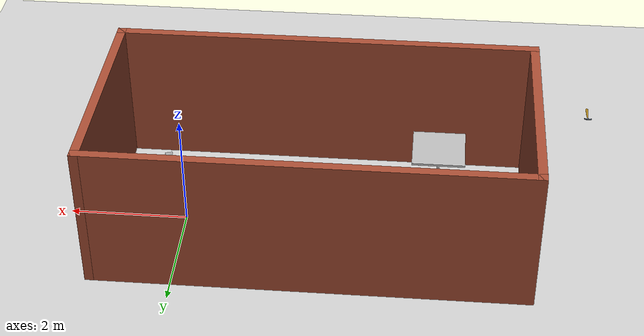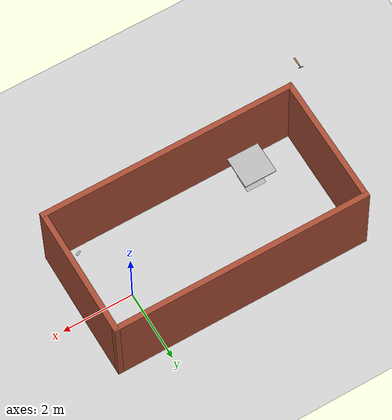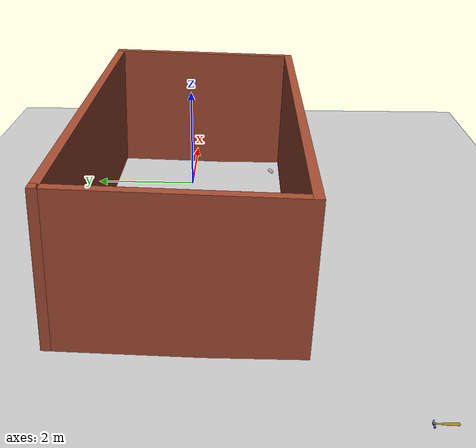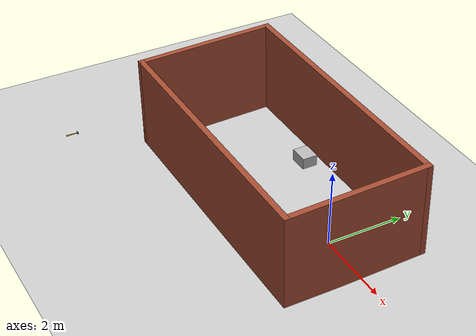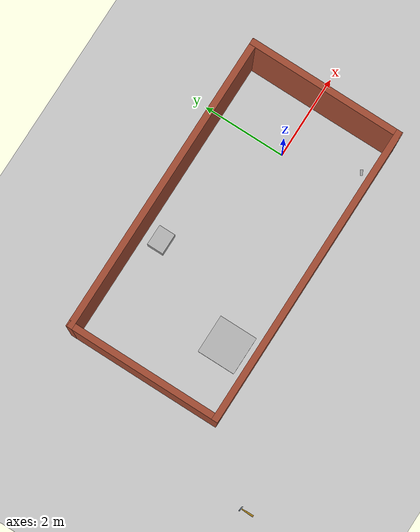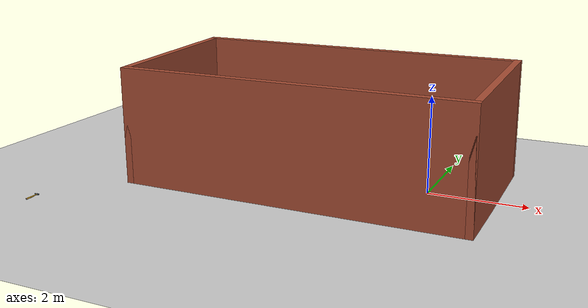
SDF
<sdf version="1.6">
 <world name="default">
  <light name="sun" type="directional">
   <pose>0 0 15 0 -0 0</pose>
   <diffuse>0.8 0.8 0.8 1</diffuse>
   <specular>0.2 0.2 0.2 1</specular>
   <attenuation>
    <range>1000</range>
    <constant>0.9</constant>
    <linear>0.01</linear>
    <quadratic>0.001</quadratic>
   </attenuation>
   <direction>-0.5 0.1 -0.9</direction>
  </light>
  <model name="ground_plane">
   <static>1</static>
   <link name="link">
    <collision name="collision">
     <geometry><plane><normal>0 0 1</normal><size>100 100</size></plane></geometry>
     <surface><friction><ode><mu>100</mu><mu2>50</mu2></ode></friction></surface>
    </collision>
    <visual name="visual">
     <transparency>1</transparency>
     <cast_shadows>0</cast_shadows>
     <geometry><plane><normal>0 0 1</normal><size>100 100</size></plane></geometry>
     <material>
      <script><uri>file://media/materials/scripts/gazebo.material</uri><name>Gazebo/Grey</name></script>
     </material>
    </visual>
   </link>
  </model>
  <gravity>0 0 -9.8</gravity>
  <magnetic_field>6e-06 2.3e-05 -4.2e-05</magnetic_field>
  <atmosphere type="adiabatic"/>
  <physics name="default_physics" default="0" type="ode">
   <max_step_size>0.001</max_step_size>
   <real_time_factor>1</real_time_factor>
   <real_time_update_rate>1000</real_time_update_rate>
  </physics>
  <scene><ambient>0.4 0.4 0.4 1</ambient><background>0.7 0.7 0.7 1</background><shadows>1</shadows></scene>
  <spherical_coordinates>
   <surface_model>EARTH_WGS84</surface_model>
   <latitude_deg>0</latitude_deg>
   <longitude_deg>0</longitude_deg>
   <elevation>0</elevation>
   <heading_deg>0</heading_deg>
  </spherical_coordinates>
  <model name="hammer">
   <static>1</static>
   <link name="link">
    <collision name="collision">
     <geometry><mesh><uri>model://hammer/meshes/hammer.dae</uri></mesh></geometry>
    </collision>
    <visual name="visual"><geometry><mesh><uri>model://hammer/meshes/hammer.dae</uri></mesh></geometry></visual>
   </link>
   <pose>-7.05574 -3.50474 0 0 -0 0</pose>
  </model>
  <model name="new_world">
   <pose>-2.23885 -0.138223 0 0.027233 -0 0</pose>
   <link name="Wall_10">
    <collision name="Wall_10_Collision">
     <geometry><box><size>7.25 0.15 2.5</size></box></geometry>
     <pose>0 0 1.25 0 -0 0</pose>
    </collision>
    <visual name="Wall_10_Visual">
     <pose>0 0 1.25 0 -0 0</pose>
     <geometry><box><size>7.25 0.15 2.5</size></box></geometry>
     <material>
      <script><uri>file://media/materials/scripts/gazebo.material</uri><name>Gazebo/Bricks</name></script>
      <ambient>1 1 1 1</ambient>
     </material>
     <meta><layer>0</layer></meta>
    </visual>
    <pose>0 1.8 0 0 -0 3.14159</pose>
   </link>
   <link name="Wall_7">
    <collision name="Wall_7_Collision">
     <geometry><box><size>3.75 0.15 2.5</size></box></geometry>
     <pose>0 0 1.25 0 -0 0</pose>
    </collision>
    <visual name="Wall_7_Visual">
     <pose>0 0 1.25 0 -0 0</pose>
     <geometry><box><size>3.75 0.15 2.5</size></box></geometry>
     <material>
      <script><uri>file://media/materials/scripts/gazebo.material</uri><name>Gazebo/Bricks</name></script>
      <ambient>1 1 1 1</ambient>
     </material>
     <meta><layer>0</layer></meta>
    </visual>
    <pose>-3.55 0 0 0 0 -1.5708</pose>
   </link>
   <link name="Wall_8">
    <collision name="Wall_8_Collision">
     <geometry><box><size>7.25 0.15 2.5</size></box></geometry>
     <pose>0 0 1.25 0 -0 0</pose>
    </collision>
    <visual name="Wall_8_Visual">
     <pose>0 0 1.25 0 -0 0</pose>
     <geometry><box><size>7.25 0.15 2.5</size></box></geometry>
     <material>
      <script><uri>file://media/materials/scripts/gazebo.material</uri><name>Gazebo/Bricks</name></script>
      <ambient>1 1 1 1</ambient>
     </material>
     <meta><layer>0</layer></meta>
    </visual>
    <pose>0 -1.8 0 0 -0 0</pose>
   </link>
   <link name="Wall_9">
    <collision name="Wall_9_Collision">
     <geometry><box><size>3.75 0.15 2.5</size></box></geometry>
     <pose>0 0 1.25 0 -0 0</pose>
    </collision>
    <visual name="Wall_9_Visual">
     <pose>0 0 1.25 0 -0 0</pose>
     <geometry><box><size>3.75 0.15 2.5</size></box></geometry>
     <material>
      <script><uri>file://media/materials/scripts/gazebo.material</uri><name>Gazebo/Bricks</name></script>
      <ambient>1 1 1 1</ambient>
     </material>
     <meta><layer>0</layer></meta>
    </visual>
    <pose>3.55 0 0 0 -0 1.5708</pose>
   </link>
   <static>1</static>
  </model>
  <model name="coke_can">
   <link name="link">
    <inertial>
     <pose>-0.01 -0.012 0.15 0 -0 0</pose>
     <mass>0.39</mass>
     <inertia><ixx>0.00058</ixx><ixy>0</ixy><ixz>0</ixz><iyy>0.00058</iyy><iyz>0</iyz><izz>0.00019</izz></inertia>
    </inertial>
    <collision name="collision">
     <pose>0 0 -0.46 0 -0 0</pose>
     <geometry><mesh><uri>model://coke_can/meshes/coke_can.dae</uri></mesh></geometry>
     <surface>
      <friction><ode><mu>1</mu><mu2>1</mu2></ode></friction>
      <contact><ode><kp>1e+07</kp><kd>1</kd><min_depth>0.001</min_depth><max_vel>0.1</max_vel></ode></contact>
     </surface>
    </collision>
    <visual name="visual">
     <pose>0 0 -0.46 0 -0 0</pose>
     <geometry><mesh><uri>model://coke_can/meshes/coke_can.dae</uri></mesh></geometry>
    </visual>
   </link>
   <pose>-4.59487 1.17996 -0.004699 -0.049575 0.000242 0.000139</pose>
  </model>
  <model name="cardboard_box">
   <pose>-3.05193 1.20388 0.149 0 -0 0</pose>
   <link name="link">
    <inertial>
     <mass>2</mass>
     <inertia>
      <ixx>0.0416667</ixx>
      <ixy>0</ixy>
      <ixz>0</ixz>
      <iyy>0.0566667</iyy>
      <iyz>0</iyz>
      <izz>0.0683333</izz>
     </inertia>
    </inertial>
    <collision name="collision">
     <geometry><box><size>0.5 0.4 0.3</size></box></geometry>
     <surface>
      <friction><ode><mu>1</mu><mu2>1</mu2></ode></friction>
      <contact><ode><kp>1e+07</kp><kd>1</kd><min_depth>0.001</min_depth><max_vel>0.1</max_vel></ode></contact>
     </surface>
    </collision>
    <visual name="visual">
     <pose>0 0 -0.15 0 -0 0</pose>
     <geometry>
      <mesh><uri>model://cardboard_box/meshes/cardboard_box.dae</uri><scale>1.25932 1.00745 0.755591</scale></mesh>
     </geometry>
    </visual>
   </link>
  </model>
  <model name="cafe_table">
   <static>1</static>
   <link name="link">
    <collision name="surface">
     <pose>0 0 0.755 0 -0 0</pose>
     <geometry><box><size>0.913 0.913 0.04</size></box></geometry>
    </collision>
    <collision name="column">
     <pose>0 0 0.37 0 -0 0</pose>
     <geometry><box><size>0.042 0.042 0.74</size></box></geometry>
    </collision>
    <collision name="base">
     <pose>0 0 0.02 0 -0 0</pose>
     <geometry><box><size>0.56 0.56 0.04</size></box></geometry>
    </collision>
    <visual name="visual">
     <geometry><mesh><uri>model://cafe_table/meshes/cafe_table.dae</uri></mesh></geometry>
    </visual>
   </link>
   <pose>-4.25909 -1.28895 0 0 -0 0</pose>
  </model>
  <model name="plastic_cup">
   <link name="link">
    <pose>0 0 0.065 0 -0 0</pose>
    <inertial>
     <mass>0.0599</mass>
     <inertia>
      <ixx>0.000302896</ixx>
      <ixy>0</ixy>
      <ixz>0</ixz>
      <iyy>0.000302896</iyy>
      <iyz>0</iyz>
      <izz>3.28764e-05</izz>
     </inertia>
    </inertial>
    <collision name="collision">
     <geometry><mesh><uri>model://plastic_cup/meshes/plastic_cup.dae</uri></mesh></geometry>
     <surface>
      <contact>
       <poissons_ratio>0.35</poissons_ratio>
       <elastic_modulus>3.10264e+09</elastic_modulus>
       <ode><kp>100000</kp><kd>100</kd><max_vel>100</max_vel><min_depth>0.001</min_depth></ode>
      </contact>
      <friction>
       <torsional>
        <coefficient>1</coefficient>
        <use_patch_radius>0</use_patch_radius>
        <surface_radius>0.01</surface_radius>
       </torsional>
      </friction>
     </surface>
    </collision>
    <visual name="visual">
     <geometry><mesh><uri>model://plastic_cup/meshes/plastic_cup.dae</uri></mesh></geometry>
     <material>
      <script><uri>file://media/materials/scripts/gazebo.material</uri><name>Gazebo/GreyTransparent</name></script>
     </material>
    </visual>
   </link>
   <pose>0.561242 -1.71467 0.019243 1.49899 -0.17083 2.08321</pose>
  </model>
 </world>
</sdf>
